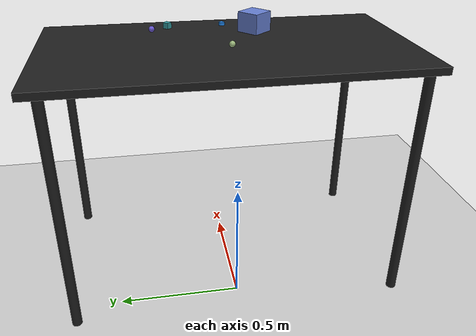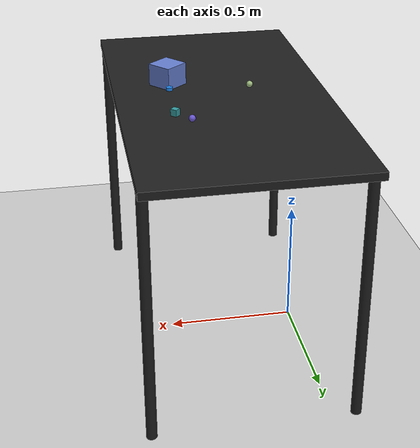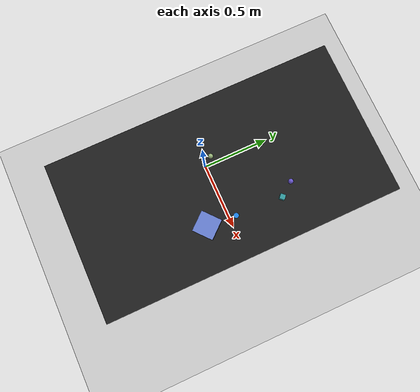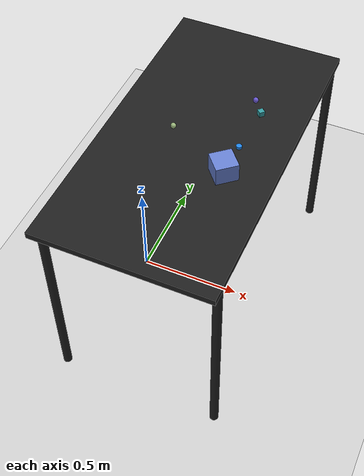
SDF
<?xml version="1.0" ?>
<sdf version="1.6">
  <world name="arm_world">
    <plugin filename="gz-sim-physics-system" name="gz::sim::systems::Physics">
      <engine>
        <filename>libgz-physics-bullet-featherstone-plugin.so</filename>
      </engine>
    </plugin>
    <plugin filename="gz-sim-user-commands-system" name="gz::sim::systems::UserCommands"/>
    <plugin filename="gz-sim-scene-broadcaster-system" name="gz::sim::systems::SceneBroadcaster"/>
    <plugin filename="gz-sim-sensors-system" name="gz::sim::systems::Sensors">
      <render_engine>ogre2</render_engine>
    </plugin>
    <gravity>0.0 0.0 -9.8</gravity>
    <scene>
      <shadows>false</shadows>
    </scene>
    <gui>
      <camera name="user_camera">
        <pose>0.75 -0.75 1.4 0 0.29 2.21</pose>
      </camera>
    </gui>
    <include>
      <uri>https://fuel.gazebosim.org/1.0/OpenRobotics/models/Sun</uri>
    </include>
    <model name="table">
      <static>true</static>
      <include>
        <uri>model://table</uri>
      </include>
      <pose>0.29 0 0 0 0 1.5708</pose>
    </model>
    <model name="ground_plane">
      <static>true</static>
      <link name="link">
        <collision name="collision">
          <geometry>
            <plane>
              <normal>0 0 1</normal>
            </plane>
          </geometry>
          <surface>
            <friction>
              <ode>
                <mu>1.0</mu>
                <mu2>1.0</mu2>
              </ode>
            </friction>
          </surface>
        </collision>
        <visual name="visual">
          <geometry>
            <plane>
              <normal>0 0 1</normal>
              <size>100 100</size>
            </plane>
          </geometry>
          <material>
            <ambient>0.8 0.8 0.8 1</ambient>
            <diffuse>0.8 0.8 0.8 1</diffuse>
            <specular>0.8 0.8 0.8 1</specular>
          </material>
        </visual>
      </link>
    </model>
    <model name="cube_l_0">
      <pose>0.474 -0.154 1.05 0 0 2.28</pose>
      <link name="cube_l_0_link">
        <collision name="cube_l_0_collision">
          <geometry>
            <box>
              <size>0.1 0.1 0.1</size>
            </box>
          </geometry>
        </collision>
        <visual name="cube_l_0_visual">
          <geometry>
            <box>
              <size>0.1 0.1 0.1</size>
            </box>
          </geometry>
          <material>
            <ambient>0.4 0.5 0.82 1</ambient>
            <diffuse>0.4 0.5 0.82 1</diffuse>
          </material>
        </visual>
        <velocity_decay>
          <linear>1</linear>
          <angular>1</angular>
        </velocity_decay>
      </link>
    </model>
    <model name="sphere_s_1">
      <pose>0.446 0.285 1.05 0 0 2.7</pose>
      <link name="sphere_s_1_link">
        <collision name="sphere_s_1_collision">
          <geometry>
            <sphere>
              <radius>0.0125</radius>
            </sphere>
          </geometry>
        </collision>
        <visual name="sphere_s_1_visual">
          <geometry>
            <sphere>
              <radius>0.0125</radius>
            </sphere>
          </geometry>
          <material>
            <ambient>0.41 0.34 0.82 1</ambient>
            <diffuse>0.41 0.34 0.82 1</diffuse>
          </material>
        </visual>
        <velocity_decay>
          <linear>1</linear>
          <angular>1</angular>
        </velocity_decay>
      </link>
    </model>
    <model name="cube_s_2">
      <pose>0.496 0.217 1.05 0 0 2.4</pose>
      <link name="cube_s_2_link">
        <collision name="cube_s_2_collision">
          <geometry>
            <box>
              <size>0.025 0.025 0.025</size>
            </box>
          </geometry>
        </collision>
        <visual name="cube_s_2_visual">
          <geometry>
            <box>
              <size>0.025 0.025 0.025</size>
            </box>
          </geometry>
          <material>
            <ambient>0.2 0.61 0.63 1</ambient>
            <diffuse>0.2 0.61 0.63 1</diffuse>
          </material>
        </visual>
        <velocity_decay>
          <linear>1</linear>
          <angular>1</angular>
        </velocity_decay>
      </link>
    </model>
    <model name="sphere_s_3">
      <pose>0.182 -0.007 1.05 0 0 6.2</pose>
      <link name="sphere_s_3_link">
        <collision name="sphere_s_3_collision">
          <geometry>
            <sphere>
              <radius>0.0125</radius>
            </sphere>
          </geometry>
        </collision>
        <visual name="sphere_s_3_visual">
          <geometry>
            <sphere>
              <radius>0.0125</radius>
            </sphere>
          </geometry>
          <material>
            <ambient>0.61 0.72 0.49 1</ambient>
            <diffuse>0.61 0.72 0.49 1</diffuse>
          </material>
        </visual>
        <velocity_decay>
          <linear>1</linear>
          <angular>1</angular>
        </velocity_decay>
      </link>
    </model>
    <model name="cylinder_s_4">
      <pose>0.486 -0.014 1.05 0 0 5.39</pose>
      <link name="cylinder_s_4_link">
        <collision name="cylinder_s_4_collision">
          <geometry>
            <cylinder>
              <radius>0.0125</radius>
              <length>0.0125</length>
            </cylinder>
          </geometry>
        </collision>
        <visual name="cylinder_s_4_visual">
          <geometry>
            <cylinder>
              <radius>0.0125</radius>
              <length>0.0125</length>
            </cylinder>
          </geometry>
          <material>
            <ambient>0.12 0.52 0.92 1</ambient>
            <diffuse>0.12 0.52 0.92 1</diffuse>
          </material>
        </visual>
        <velocity_decay>
          <linear>1</linear>
          <angular>1</angular>
        </velocity_decay>
      </link>
    </model>
  </world>
</sdf>

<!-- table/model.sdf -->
<sdf version="1.5">
  <model name="table">
    <static>true</static>
    <link name="link">
      <collision name="surface">
        <pose>0 0 1.0 0 0 0</pose>
        <geometry>
          <box>
            <size>1.5 0.8 0.03</size>
          </box>
        </geometry>
        <surface>
          <friction>
            <ode>
              <mu>0.6</mu>
              <mu2>0.6</mu2>
            </ode>
          </friction>
        </surface>
      </collision>
      <visual name="surface">
        <pose>0 0 1.0 0 0 0</pose>
        <geometry>
          <box>
            <size>1.5 0.8 0.03</size>
          </box>
        </geometry>
        <material>
          <script>
            <uri>file://media/materials/scripts/gazebo.material</uri>
            <name>Gazebo/Black</name>
          </script>
        </material>
      </visual>
      <collision name="front_left_leg">
        <pose>0.68 0.38 0.5 0 0 0</pose>
        <geometry>
          <cylinder>
            <radius>0.02</radius>
            <length>1.0</length>
          </cylinder>
        </geometry>
      </collision>
      <visual name="front_left_leg">
        <pose>0.68 0.38 0.5 0 0 0</pose>
        <geometry>
          <cylinder>
            <radius>0.02</radius>
            <length>1.0</length>
          </cylinder>
        </geometry>
        <material>
          <script>
            <uri>file://media/materials/scripts/gazebo.material</uri>
            <name>Gazebo/Black</name>
          </script>
        </material>
      </visual>
      <collision name="front_right_leg">
        <pose>0.68 -0.38 0.5 0 0 0</pose>
        <geometry>
          <cylinder>
            <radius>0.02</radius>
            <length>1.0</length>
          </cylinder>
        </geometry>
      </collision>
      <visual name="front_right_leg">
        <pose>0.68 -0.38 0.5 0 0 0</pose>
        <geometry>
          <cylinder>
            <radius>0.02</radius>
            <length>1.0</length>
          </cylinder>
        </geometry>
        <material>
          <script>
            <uri>file://media/materials/scripts/gazebo.material</uri>
            <name>Gazebo/Black</name>
          </script>
        </material>
      </visual>
      <collision name="back_right_leg">
        <pose>-0.68 -0.38 0.5 0 0 0</pose>
        <geometry>
          <cylinder>
            <radius>0.02</radius>
            <length>1.0</length>
          </cylinder>
        </geometry>
      </collision>
      <visual name="back_right_leg">
        <pose>-0.68 -0.38 0.5 0 0 0</pose>
        <geometry>
          <cylinder>
            <radius>0.02</radius>
            <length>1.0</length>
          </cylinder>
        </geometry>
        <material>
          <script>
            <uri>file://media/materials/scripts/gazebo.material</uri>
            <name>Gazebo/Black</name>
          </script>
        </material>
      </visual>
      <collision name="back_left_leg">
        <pose>-0.68 0.38 0.5 0 0 0</pose>
        <geometry>
          <cylinder>
            <radius>0.02</radius>
            <length>1.0</length>
          </cylinder>
        </geometry>
      </collision>
      <visual name="back_left_leg">
        <pose>-0.68 0.38 0.5 0 0 0</pose>
        <geometry>
          <cylinder>
            <radius>0.02</radius>
            <length>1.0</length>
          </cylinder>
        </geometry>
        <material>
          <script>
            <uri>file://media/materials/scripts/gazebo.material</uri>
            <name>Gazebo/Black</name>
          </script>
        </material>
      </visual>
    </link>
  </model>
</sdf>
